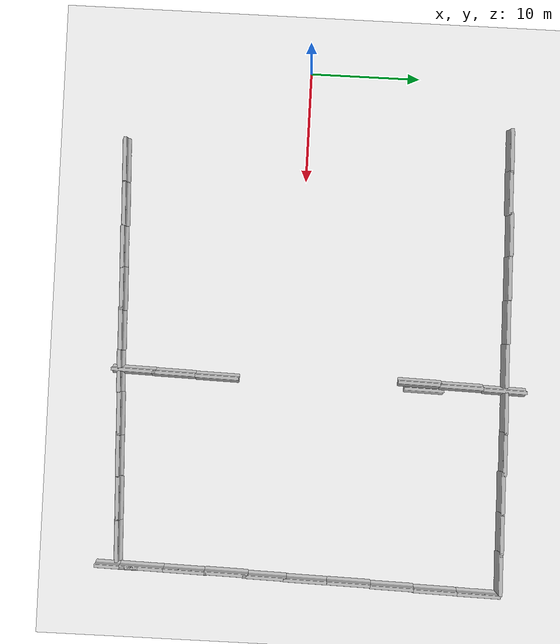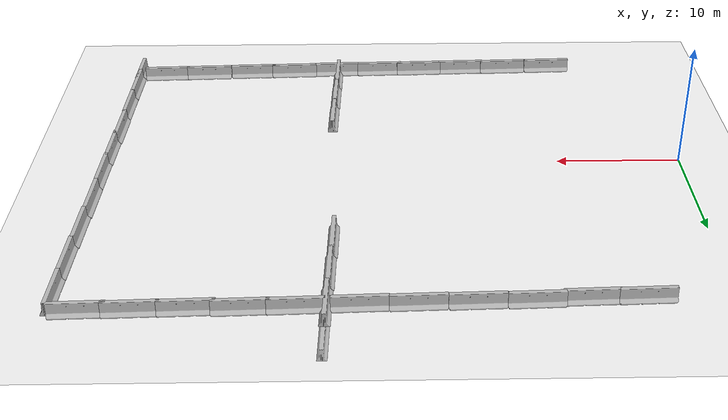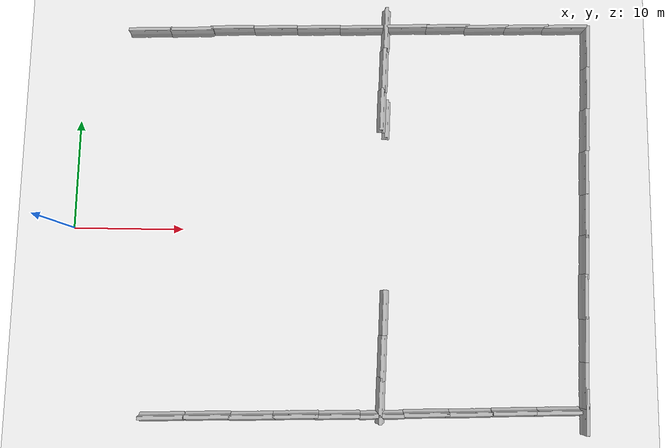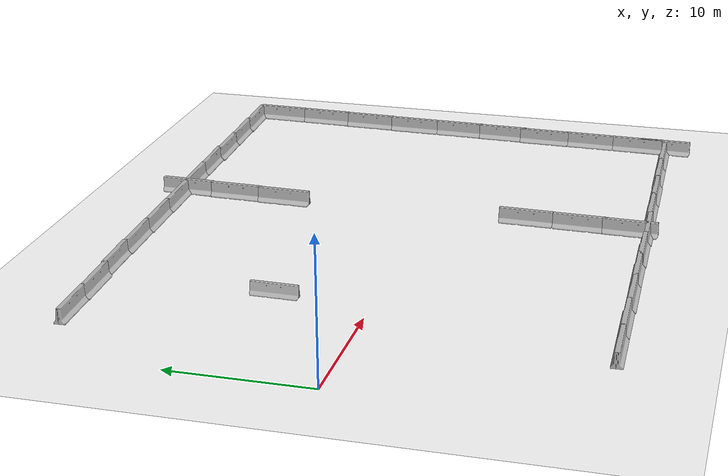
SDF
<sdf version="1.6">
 <world name="default">
  <model name="ground_plane">
   <static>1</static>
   <link name="link">
    <collision name="collision">
     <geometry><plane><normal>0 0 1</normal><size>100 100</size></plane></geometry>
     <surface><friction><ode><mu>100</mu><mu2>50</mu2></ode></friction></surface>
    </collision>
    <visual name="visual">
     <cast_shadows>0</cast_shadows>
     <geometry><plane><normal>0 0 1</normal><size>100 100</size></plane></geometry>
     <material>
      <script><uri>file://media/materials/scripts/gazebo.material</uri><name>Gazebo/Grey</name></script>
     </material>
    </visual>
   </link>
  </model>
  <model name="jersey_barrier_clone_clone_0">
   <static>1</static>
   <link name="link">
    <visual name="visual">
     <geometry>
      <mesh><uri>model://jersey_barrier/meshes/jersey_barrier.dae</uri><scale>1 1 1</scale></mesh>
     </geometry>
    </visual>
    <collision name="upright">
     <pose>0 0 0.5715 0 -0 0</pose>
     <geometry><box><size>4.06542 0.3063 1.143</size></box></geometry>
    </collision>
    <collision name="base">
     <pose>0 0 0.032258 0 -0 0</pose>
     <geometry><box><size>4.06542 0.8107 0.064516</size></box></geometry>
    </collision>
    <collision name="base2">
     <pose>0 0 0.1 0 -0 0</pose>
     <geometry><box><size>4.06542 0.65 0.1</size></box></geometry>
    </collision>
    <collision name="base3">
     <pose>0 0 0.2 0 -0 0</pose>
     <geometry><box><size>4.06542 0.5 0.1</size></box></geometry>
    </collision>
    <collision name="left-angle">
     <pose>0 -0.224 0.2401 0.9 -0 0</pose>
     <geometry><box><size>4.06542 0.5 0.064516</size></box></geometry>
    </collision>
    <collision name="right-angle">
     <pose>0 0.224 0.2401 -0.9 0 0</pose>
     <geometry><box><size>4.06542 0.5 0.064516</size></box></geometry>
    </collision>
   </link>
   <pose>8.87687 -16.7227 0 0 -0 0.033275</pose>
  </model>
  <model name="jersey_barrier_clone_clone_1">
   <static>1</static>
   <link name="link">
    <visual name="visual">
     <geometry>
      <mesh><uri>model://jersey_barrier/meshes/jersey_barrier.dae</uri><scale>1 1 1</scale></mesh>
     </geometry>
    </visual>
    <collision name="upright">
     <pose>0 0 0.5715 0 -0 0</pose>
     <geometry><box><size>4.06542 0.3063 1.143</size></box></geometry>
    </collision>
    <collision name="base">
     <pose>0 0 0.032258 0 -0 0</pose>
     <geometry><box><size>4.06542 0.8107 0.064516</size></box></geometry>
    </collision>
    <collision name="base2">
     <pose>0 0 0.1 0 -0 0</pose>
     <geometry><box><size>4.06542 0.65 0.1</size></box></geometry>
    </collision>
    <collision name="base3">
     <pose>0 0 0.2 0 -0 0</pose>
     <geometry><box><size>4.06542 0.5 0.1</size></box></geometry>
    </collision>
    <collision name="left-angle">
     <pose>0 -0.224 0.2401 0.9 -0 0</pose>
     <geometry><box><size>4.06542 0.5 0.064516</size></box></geometry>
    </collision>
    <collision name="right-angle">
     <pose>0 0.224 0.2401 -0.9 0 0</pose>
     <geometry><box><size>4.06542 0.5 0.064516</size></box></geometry>
    </collision>
   </link>
   <pose>12.9707 -16.5908 0 0 -0 0.033275</pose>
  </model>
  <model name="jersey_barrier_clone_clone_2">
   <static>1</static>
   <link name="link">
    <visual name="visual">
     <geometry>
      <mesh><uri>model://jersey_barrier/meshes/jersey_barrier.dae</uri><scale>1 1 1</scale></mesh>
     </geometry>
    </visual>
    <collision name="upright">
     <pose>0 0 0.5715 0 -0 0</pose>
     <geometry><box><size>4.06542 0.3063 1.143</size></box></geometry>
    </collision>
    <collision name="base">
     <pose>0 0 0.032258 0 -0 0</pose>
     <geometry><box><size>4.06542 0.8107 0.064516</size></box></geometry>
    </collision>
    <collision name="base2">
     <pose>0 0 0.1 0 -0 0</pose>
     <geometry><box><size>4.06542 0.65 0.1</size></box></geometry>
    </collision>
    <collision name="base3">
     <pose>0 0 0.2 0 -0 0</pose>
     <geometry><box><size>4.06542 0.5 0.1</size></box></geometry>
    </collision>
    <collision name="left-angle">
     <pose>0 -0.224 0.2401 0.9 -0 0</pose>
     <geometry><box><size>4.06542 0.5 0.064516</size></box></geometry>
    </collision>
    <collision name="right-angle">
     <pose>0 0.224 0.2401 -0.9 0 0</pose>
     <geometry><box><size>4.06542 0.5 0.064516</size></box></geometry>
    </collision>
   </link>
   <pose>16.8898 -16.5319 0 0 -0 0.033275</pose>
  </model>
  <model name="jersey_barrier_clone_clone_3">
   <static>1</static>
   <link name="link">
    <visual name="visual">
     <geometry>
      <mesh><uri>model://jersey_barrier/meshes/jersey_barrier.dae</uri><scale>1 1 1</scale></mesh>
     </geometry>
    </visual>
    <collision name="upright">
     <pose>0 0 0.5715 0 -0 0</pose>
     <geometry><box><size>4.06542 0.3063 1.143</size></box></geometry>
    </collision>
    <collision name="base">
     <pose>0 0 0.032258 0 -0 0</pose>
     <geometry><box><size>4.06542 0.8107 0.064516</size></box></geometry>
    </collision>
    <collision name="base2">
     <pose>0 0 0.1 0 -0 0</pose>
     <geometry><box><size>4.06542 0.65 0.1</size></box></geometry>
    </collision>
    <collision name="base3">
     <pose>0 0 0.2 0 -0 0</pose>
     <geometry><box><size>4.06542 0.5 0.1</size></box></geometry>
    </collision>
    <collision name="left-angle">
     <pose>0 -0.224 0.2401 0.9 -0 0</pose>
     <geometry><box><size>4.06542 0.5 0.064516</size></box></geometry>
    </collision>
    <collision name="right-angle">
     <pose>0 0.224 0.2401 -0.9 0 0</pose>
     <geometry><box><size>4.06542 0.5 0.064516</size></box></geometry>
    </collision>
   </link>
   <pose>20.7541 -16.3983 0 0 -0 0.033275</pose>
  </model>
  <model name="jersey_barrier_clone_clone_clone">
   <static>1</static>
   <link name="link">
    <visual name="visual">
     <geometry>
      <mesh><uri>model://jersey_barrier/meshes/jersey_barrier.dae</uri><scale>1 1 1</scale></mesh>
     </geometry>
    </visual>
    <collision name="upright">
     <pose>0 0 0.5715 0 -0 0</pose>
     <geometry><box><size>4.06542 0.3063 1.143</size></box></geometry>
    </collision>
    <collision name="base">
     <pose>0 0 0.032258 0 -0 0</pose>
     <geometry><box><size>4.06542 0.8107 0.064516</size></box></geometry>
    </collision>
    <collision name="base2">
     <pose>0 0 0.1 0 -0 0</pose>
     <geometry><box><size>4.06542 0.65 0.1</size></box></geometry>
    </collision>
    <collision name="base3">
     <pose>0 0 0.2 0 -0 0</pose>
     <geometry><box><size>4.06542 0.5 0.1</size></box></geometry>
    </collision>
    <collision name="left-angle">
     <pose>0 -0.224 0.2401 0.9 -0 0</pose>
     <geometry><box><size>4.06542 0.5 0.064516</size></box></geometry>
    </collision>
    <collision name="right-angle">
     <pose>0 0.224 0.2401 -0.9 0 0</pose>
     <geometry><box><size>4.06542 0.5 0.064516</size></box></geometry>
    </collision>
   </link>
   <pose>24.4141 -16.3295 0 0 -0 0.033275</pose>
  </model>
  <model name="jersey_barrier_clone_clone_clone_3_clone">
   <static>1</static>
   <link name="link">
    <visual name="visual">
     <geometry>
      <mesh><uri>model://jersey_barrier/meshes/jersey_barrier.dae</uri><scale>1 1 1</scale></mesh>
     </geometry>
    </visual>
    <collision name="upright">
     <pose>0 0 0.5715 0 -0 0</pose>
     <geometry><box><size>4.06542 0.3063 1.143</size></box></geometry>
    </collision>
    <collision name="base">
     <pose>0 0 0.032258 0 -0 0</pose>
     <geometry><box><size>4.06542 0.8107 0.064516</size></box></geometry>
    </collision>
    <collision name="base2">
     <pose>0 0 0.1 0 -0 0</pose>
     <geometry><box><size>4.06542 0.65 0.1</size></box></geometry>
    </collision>
    <collision name="base3">
     <pose>0 0 0.2 0 -0 0</pose>
     <geometry><box><size>4.06542 0.5 0.1</size></box></geometry>
    </collision>
    <collision name="left-angle">
     <pose>0 -0.224 0.2401 0.9 -0 0</pose>
     <geometry><box><size>4.06542 0.5 0.064516</size></box></geometry>
    </collision>
    <collision name="right-angle">
     <pose>0 0.224 0.2401 -0.9 0 0</pose>
     <geometry><box><size>4.06542 0.5 0.064516</size></box></geometry>
    </collision>
   </link>
   <pose>28.2276 -14.9648 0 0 0 -1.5926</pose>
  </model>
  <model name="jersey_barrier_clone_clone_clone_3_clone_clone">
   <static>1</static>
   <link name="link">
    <visual name="visual">
     <geometry>
      <mesh><uri>model://jersey_barrier/meshes/jersey_barrier.dae</uri><scale>1 1 1</scale></mesh>
     </geometry>
    </visual>
    <collision name="upright">
     <pose>0 0 0.5715 0 -0 0</pose>
     <geometry><box><size>4.06542 0.3063 1.143</size></box></geometry>
    </collision>
    <collision name="base">
     <pose>0 0 0.032258 0 -0 0</pose>
     <geometry><box><size>4.06542 0.8107 0.064516</size></box></geometry>
    </collision>
    <collision name="base2">
     <pose>0 0 0.1 0 -0 0</pose>
     <geometry><box><size>4.06542 0.65 0.1</size></box></geometry>
    </collision>
    <collision name="base3">
     <pose>0 0 0.2 0 -0 0</pose>
     <geometry><box><size>4.06542 0.5 0.1</size></box></geometry>
    </collision>
    <collision name="left-angle">
     <pose>0 -0.224 0.2401 0.9 -0 0</pose>
     <geometry><box><size>4.06542 0.5 0.064516</size></box></geometry>
    </collision>
    <collision name="right-angle">
     <pose>0 0.224 0.2401 -0.9 0 0</pose>
     <geometry><box><size>4.06542 0.5 0.064516</size></box></geometry>
    </collision>
   </link>
   <pose>28.3372 -11.2824 0 0 0 -1.5926</pose>
  </model>
  <model name="jersey_barrier_clone_clone_clone_3_clone_clone_0">
   <static>1</static>
   <link name="link">
    <visual name="visual">
     <geometry>
      <mesh><uri>model://jersey_barrier/meshes/jersey_barrier.dae</uri><scale>1 1 1</scale></mesh>
     </geometry>
    </visual>
    <collision name="upright">
     <pose>0 0 0.5715 0 -0 0</pose>
     <geometry><box><size>4.06542 0.3063 1.143</size></box></geometry>
    </collision>
    <collision name="base">
     <pose>0 0 0.032258 0 -0 0</pose>
     <geometry><box><size>4.06542 0.8107 0.064516</size></box></geometry>
    </collision>
    <collision name="base2">
     <pose>0 0 0.1 0 -0 0</pose>
     <geometry><box><size>4.06542 0.65 0.1</size></box></geometry>
    </collision>
    <collision name="base3">
     <pose>0 0 0.2 0 -0 0</pose>
     <geometry><box><size>4.06542 0.5 0.1</size></box></geometry>
    </collision>
    <collision name="left-angle">
     <pose>0 -0.224 0.2401 0.9 -0 0</pose>
     <geometry><box><size>4.06542 0.5 0.064516</size></box></geometry>
    </collision>
    <collision name="right-angle">
     <pose>0 0.224 0.2401 -0.9 0 0</pose>
     <geometry><box><size>4.06542 0.5 0.064516</size></box></geometry>
    </collision>
   </link>
   <pose>28.4632 -7.24807 0 0 0 -1.5926</pose>
  </model>
  <model name="jersey_barrier_clone_clone_clone_clone">
   <static>1</static>
   <link name="link">
    <visual name="visual">
     <geometry>
      <mesh><uri>model://jersey_barrier/meshes/jersey_barrier.dae</uri><scale>1 1 1</scale></mesh>
     </geometry>
    </visual>
    <collision name="upright">
     <pose>0 0 0.5715 0 -0 0</pose>
     <geometry><box><size>4.06542 0.3063 1.143</size></box></geometry>
    </collision>
    <collision name="base">
     <pose>0 0 0.032258 0 -0 0</pose>
     <geometry><box><size>4.06542 0.8107 0.064516</size></box></geometry>
    </collision>
    <collision name="base2">
     <pose>0 0 0.1 0 -0 0</pose>
     <geometry><box><size>4.06542 0.65 0.1</size></box></geometry>
    </collision>
    <collision name="base3">
     <pose>0 0 0.2 0 -0 0</pose>
     <geometry><box><size>4.06542 0.5 0.1</size></box></geometry>
    </collision>
    <collision name="left-angle">
     <pose>0 -0.224 0.2401 0.9 -0 0</pose>
     <geometry><box><size>4.06542 0.5 0.064516</size></box></geometry>
    </collision>
    <collision name="right-angle">
     <pose>0 0.224 0.2401 -0.9 0 0</pose>
     <geometry><box><size>4.06542 0.5 0.064516</size></box></geometry>
    </collision>
   </link>
   <pose>28.3606 -16.2557 0 0 -0 0.033275</pose>
  </model>
  <model name="jersey_barrier_clone_clone_clone_3_clone_clone_1">
   <static>1</static>
   <link name="link">
    <visual name="visual">
     <geometry>
      <mesh><uri>model://jersey_barrier/meshes/jersey_barrier.dae</uri><scale>1 1 1</scale></mesh>
     </geometry>
    </visual>
    <collision name="upright">
     <pose>0 0 0.5715 0 -0 0</pose>
     <geometry><box><size>4.06542 0.3063 1.143</size></box></geometry>
    </collision>
    <collision name="base">
     <pose>0 0 0.032258 0 -0 0</pose>
     <geometry><box><size>4.06542 0.8107 0.064516</size></box></geometry>
    </collision>
    <collision name="base2">
     <pose>0 0 0.1 0 -0 0</pose>
     <geometry><box><size>4.06542 0.65 0.1</size></box></geometry>
    </collision>
    <collision name="base3">
     <pose>0 0 0.2 0 -0 0</pose>
     <geometry><box><size>4.06542 0.5 0.1</size></box></geometry>
    </collision>
    <collision name="left-angle">
     <pose>0 -0.224 0.2401 0.9 -0 0</pose>
     <geometry><box><size>4.06542 0.5 0.064516</size></box></geometry>
    </collision>
    <collision name="right-angle">
     <pose>0 0.224 0.2401 -0.9 0 0</pose>
     <geometry><box><size>4.06542 0.5 0.064516</size></box></geometry>
    </collision>
   </link>
   <pose>28.2436 15.3088 0 0 0 -1.5926</pose>
  </model>
  <model name="jersey_barrier_clone_clone_clone_3_clone_clone_2">
   <static>1</static>
   <link name="link">
    <visual name="visual">
     <geometry>
      <mesh><uri>model://jersey_barrier/meshes/jersey_barrier.dae</uri><scale>1 1 1</scale></mesh>
     </geometry>
    </visual>
    <collision name="upright">
     <pose>0 0 0.5715 0 -0 0</pose>
     <geometry><box><size>4.06542 0.3063 1.143</size></box></geometry>
    </collision>
    <collision name="base">
     <pose>0 0 0.032258 0 -0 0</pose>
     <geometry><box><size>4.06542 0.8107 0.064516</size></box></geometry>
    </collision>
    <collision name="base2">
     <pose>0 0 0.1 0 -0 0</pose>
     <geometry><box><size>4.06542 0.65 0.1</size></box></geometry>
    </collision>
    <collision name="base3">
     <pose>0 0 0.2 0 -0 0</pose>
     <geometry><box><size>4.06542 0.5 0.1</size></box></geometry>
    </collision>
    <collision name="left-angle">
     <pose>0 -0.224 0.2401 0.9 -0 0</pose>
     <geometry><box><size>4.06542 0.5 0.064516</size></box></geometry>
    </collision>
    <collision name="right-angle">
     <pose>0 0.224 0.2401 -0.9 0 0</pose>
     <geometry><box><size>4.06542 0.5 0.064516</size></box></geometry>
    </collision>
   </link>
   <pose>29.0417 12.8143 -8.43284 0 0 -1.5926</pose>
  </model>
  <model name="jersey_barrier_clone_clone_clone_3_clone_clone_3">
   <static>1</static>
   <link name="link">
    <visual name="visual">
     <geometry>
      <mesh><uri>model://jersey_barrier/meshes/jersey_barrier.dae</uri><scale>1 1 1</scale></mesh>
     </geometry>
    </visual>
    <collision name="upright">
     <pose>0 0 0.5715 0 -0 0</pose>
     <geometry><box><size>4.06542 0.3063 1.143</size></box></geometry>
    </collision>
    <collision name="base">
     <pose>0 0 0.032258 0 -0 0</pose>
     <geometry><box><size>4.06542 0.8107 0.064516</size></box></geometry>
    </collision>
    <collision name="base2">
     <pose>0 0 0.1 0 -0 0</pose>
     <geometry><box><size>4.06542 0.65 0.1</size></box></geometry>
    </collision>
    <collision name="base3">
     <pose>0 0 0.2 0 -0 0</pose>
     <geometry><box><size>4.06542 0.5 0.1</size></box></geometry>
    </collision>
    <collision name="left-angle">
     <pose>0 -0.224 0.2401 0.9 -0 0</pose>
     <geometry><box><size>4.06542 0.5 0.064516</size></box></geometry>
    </collision>
    <collision name="right-angle">
     <pose>0 0.224 0.2401 -0.9 0 0</pose>
     <geometry><box><size>4.06542 0.5 0.064516</size></box></geometry>
    </collision>
   </link>
   <pose>28.0855 11.4464 0 0 0 -1.5926</pose>
  </model>
  <model name="jersey_barrier_clone_clone_clone_3_clone_clone_1_clone">
   <static>1</static>
   <link name="link">
    <visual name="visual">
     <geometry>
      <mesh><uri>model://jersey_barrier/meshes/jersey_barrier.dae</uri><scale>1 1 1</scale></mesh>
     </geometry>
    </visual>
    <collision name="upright">
     <pose>0 0 0.5715 0 -0 0</pose>
     <geometry><box><size>4.06542 0.3063 1.143</size></box></geometry>
    </collision>
    <collision name="base">
     <pose>0 0 0.032258 0 -0 0</pose>
     <geometry><box><size>4.06542 0.8107 0.064516</size></box></geometry>
    </collision>
    <collision name="base2">
     <pose>0 0 0.1 0 -0 0</pose>
     <geometry><box><size>4.06542 0.65 0.1</size></box></geometry>
    </collision>
    <collision name="base3">
     <pose>0 0 0.2 0 -0 0</pose>
     <geometry><box><size>4.06542 0.5 0.1</size></box></geometry>
    </collision>
    <collision name="left-angle">
     <pose>0 -0.224 0.2401 0.9 -0 0</pose>
     <geometry><box><size>4.06542 0.5 0.064516</size></box></geometry>
    </collision>
    <collision name="right-angle">
     <pose>0 0.224 0.2401 -0.9 0 0</pose>
     <geometry><box><size>4.06542 0.5 0.064516</size></box></geometry>
    </collision>
   </link>
   <pose>28.4083 19.2885 0 0 0 -1.5926</pose>
  </model>
  <model name="jersey_barrier_clone_clone_clone_clone_0">
   <static>1</static>
   <link name="link">
    <visual name="visual">
     <geometry>
      <mesh><uri>model://jersey_barrier/meshes/jersey_barrier.dae</uri><scale>1 1 1</scale></mesh>
     </geometry>
    </visual>
    <collision name="upright">
     <pose>0 0 0.5715 0 -0 0</pose>
     <geometry><box><size>4.06542 0.3063 1.143</size></box></geometry>
    </collision>
    <collision name="base">
     <pose>0 0 0.032258 0 -0 0</pose>
     <geometry><box><size>4.06542 0.8107 0.064516</size></box></geometry>
    </collision>
    <collision name="base2">
     <pose>0 0 0.1 0 -0 0</pose>
     <geometry><box><size>4.06542 0.65 0.1</size></box></geometry>
    </collision>
    <collision name="base3">
     <pose>0 0 0.2 0 -0 0</pose>
     <geometry><box><size>4.06542 0.5 0.1</size></box></geometry>
    </collision>
    <collision name="left-angle">
     <pose>0 -0.224 0.2401 0.9 -0 0</pose>
     <geometry><box><size>4.06542 0.5 0.064516</size></box></geometry>
    </collision>
    <collision name="right-angle">
     <pose>0 0.224 0.2401 -0.9 0 0</pose>
     <geometry><box><size>4.06542 0.5 0.064516</size></box></geometry>
    </collision>
   </link>
   <pose>26.0844 19.3245 0 0 -0 0.033275</pose>
  </model>
  <model name="jersey_barrier_clone_clone_clone_clone_0_clone">
   <static>1</static>
   <link name="link">
    <visual name="visual">
     <geometry>
      <mesh><uri>model://jersey_barrier/meshes/jersey_barrier.dae</uri><scale>1 1 1</scale></mesh>
     </geometry>
    </visual>
    <collision name="upright">
     <pose>0 0 0.5715 0 -0 0</pose>
     <geometry><box><size>4.06542 0.3063 1.143</size></box></geometry>
    </collision>
    <collision name="base">
     <pose>0 0 0.032258 0 -0 0</pose>
     <geometry><box><size>4.06542 0.8107 0.064516</size></box></geometry>
    </collision>
    <collision name="base2">
     <pose>0 0 0.1 0 -0 0</pose>
     <geometry><box><size>4.06542 0.65 0.1</size></box></geometry>
    </collision>
    <collision name="base3">
     <pose>0 0 0.2 0 -0 0</pose>
     <geometry><box><size>4.06542 0.5 0.1</size></box></geometry>
    </collision>
    <collision name="left-angle">
     <pose>0 -0.224 0.2401 0.9 -0 0</pose>
     <geometry><box><size>4.06542 0.5 0.064516</size></box></geometry>
    </collision>
    <collision name="right-angle">
     <pose>0 0.224 0.2401 -0.9 0 0</pose>
     <geometry><box><size>4.06542 0.5 0.064516</size></box></geometry>
    </collision>
   </link>
   <pose>22.068 19.2501 0 0 -0 0.033275</pose>
  </model>
  <model name="jersey_barrier_clone_clone_clone_clone_0_clone_0">
   <static>1</static>
   <link name="link">
    <visual name="visual">
     <geometry>
      <mesh><uri>model://jersey_barrier/meshes/jersey_barrier.dae</uri><scale>1 1 1</scale></mesh>
     </geometry>
    </visual>
    <collision name="upright">
     <pose>0 0 0.5715 0 -0 0</pose>
     <geometry><box><size>4.06542 0.3063 1.143</size></box></geometry>
    </collision>
    <collision name="base">
     <pose>0 0 0.032258 0 -0 0</pose>
     <geometry><box><size>4.06542 0.8107 0.064516</size></box></geometry>
    </collision>
    <collision name="base2">
     <pose>0 0 0.1 0 -0 0</pose>
     <geometry><box><size>4.06542 0.65 0.1</size></box></geometry>
    </collision>
    <collision name="base3">
     <pose>0 0 0.2 0 -0 0</pose>
     <geometry><box><size>4.06542 0.5 0.1</size></box></geometry>
    </collision>
    <collision name="left-angle">
     <pose>0 -0.224 0.2401 0.9 -0 0</pose>
     <geometry><box><size>4.06542 0.5 0.064516</size></box></geometry>
    </collision>
    <collision name="right-angle">
     <pose>0 0.224 0.2401 -0.9 0 0</pose>
     <geometry><box><size>4.06542 0.5 0.064516</size></box></geometry>
    </collision>
   </link>
   <pose>18.0097 19.1749 0 0 -0 0.033275</pose>
  </model>
  <model name="jersey_barrier_clone_clone_clone_clone_0_clone_0_clone">
   <static>1</static>
   <link name="link">
    <visual name="visual">
     <geometry>
      <mesh><uri>model://jersey_barrier/meshes/jersey_barrier.dae</uri><scale>1 1 1</scale></mesh>
     </geometry>
    </visual>
    <collision name="upright">
     <pose>0 0 0.5715 0 -0 0</pose>
     <geometry><box><size>4.06542 0.3063 1.143</size></box></geometry>
    </collision>
    <collision name="base">
     <pose>0 0 0.032258 0 -0 0</pose>
     <geometry><box><size>4.06542 0.8107 0.064516</size></box></geometry>
    </collision>
    <collision name="base2">
     <pose>0 0 0.1 0 -0 0</pose>
     <geometry><box><size>4.06542 0.65 0.1</size></box></geometry>
    </collision>
    <collision name="base3">
     <pose>0 0 0.2 0 -0 0</pose>
     <geometry><box><size>4.06542 0.5 0.1</size></box></geometry>
    </collision>
    <collision name="left-angle">
     <pose>0 -0.224 0.2401 0.9 -0 0</pose>
     <geometry><box><size>4.06542 0.5 0.064516</size></box></geometry>
    </collision>
    <collision name="right-angle">
     <pose>0 0.224 0.2401 -0.9 0 0</pose>
     <geometry><box><size>4.06542 0.5 0.064516</size></box></geometry>
    </collision>
   </link>
   <pose>13.949 19.1026 0 0 -0 0.033275</pose>
  </model>
  <model name="jersey_barrier_clone_clone_clone_clone_0_clone_0_clone_clone">
   <static>1</static>
   <link name="link">
    <visual name="visual">
     <geometry>
      <mesh><uri>model://jersey_barrier/meshes/jersey_barrier.dae</uri><scale>1 1 1</scale></mesh>
     </geometry>
    </visual>
    <collision name="upright">
     <pose>0 0 0.5715 0 -0 0</pose>
     <geometry><box><size>4.06542 0.3063 1.143</size></box></geometry>
    </collision>
    <collision name="base">
     <pose>0 0 0.032258 0 -0 0</pose>
     <geometry><box><size>4.06542 0.8107 0.064516</size></box></geometry>
    </collision>
    <collision name="base2">
     <pose>0 0 0.1 0 -0 0</pose>
     <geometry><box><size>4.06542 0.65 0.1</size></box></geometry>
    </collision>
    <collision name="base3">
     <pose>0 0 0.2 0 -0 0</pose>
     <geometry><box><size>4.06542 0.5 0.1</size></box></geometry>
    </collision>
    <collision name="left-angle">
     <pose>0 -0.224 0.2401 0.9 -0 0</pose>
     <geometry><box><size>4.06542 0.5 0.064516</size></box></geometry>
    </collision>
    <collision name="right-angle">
     <pose>0 0.224 0.2401 -0.9 0 0</pose>
     <geometry><box><size>4.06542 0.5 0.064516</size></box></geometry>
    </collision>
   </link>
   <pose>10.1358 18.8674 0 0 -0 0.033275</pose>
  </model>
  <model name="jersey_barrier_clone_clone_clone_clone_0_clone_0_clone_clone_0">
   <static>1</static>
   <link name="link">
    <visual name="visual">
     <geometry>
      <mesh><uri>model://jersey_barrier/meshes/jersey_barrier.dae</uri><scale>1 1 1</scale></mesh>
     </geometry>
    </visual>
    <collision name="upright">
     <pose>0 0 0.5715 0 -0 0</pose>
     <geometry><box><size>4.06542 0.3063 1.143</size></box></geometry>
    </collision>
    <collision name="base">
     <pose>0 0 0.032258 0 -0 0</pose>
     <geometry><box><size>4.06542 0.8107 0.064516</size></box></geometry>
    </collision>
    <collision name="base2">
     <pose>0 0 0.1 0 -0 0</pose>
     <geometry><box><size>4.06542 0.65 0.1</size></box></geometry>
    </collision>
    <collision name="base3">
     <pose>0 0 0.2 0 -0 0</pose>
     <geometry><box><size>4.06542 0.5 0.1</size></box></geometry>
    </collision>
    <collision name="left-angle">
     <pose>0 -0.224 0.2401 0.9 -0 0</pose>
     <geometry><box><size>4.06542 0.5 0.064516</size></box></geometry>
    </collision>
    <collision name="right-angle">
     <pose>0 0.224 0.2401 -0.9 0 0</pose>
     <geometry><box><size>4.06542 0.5 0.064516</size></box></geometry>
    </collision>
   </link>
   <pose>6.27406 18.7774 0 0 -0 0.033275</pose>
  </model>
  <model name="jersey_barrier_clone_clone_clone_clone_clone">
   <static>1</static>
   <link name="link">
    <visual name="visual">
     <geometry>
      <mesh><uri>model://jersey_barrier/meshes/jersey_barrier.dae</uri><scale>1 1 1</scale></mesh>
     </geometry>
    </visual>
    <collision name="upright">
     <pose>0 0 0.5715 0 -0 0</pose>
     <geometry><box><size>4.06542 0.3063 1.143</size></box></geometry>
    </collision>
    <collision name="base">
     <pose>0 0 0.032258 0 -0 0</pose>
     <geometry><box><size>4.06542 0.8107 0.064516</size></box></geometry>
    </collision>
    <collision name="base2">
     <pose>0 0 0.1 0 -0 0</pose>
     <geometry><box><size>4.06542 0.65 0.1</size></box></geometry>
    </collision>
    <collision name="base3">
     <pose>0 0 0.2 0 -0 0</pose>
     <geometry><box><size>4.06542 0.5 0.1</size></box></geometry>
    </collision>
    <collision name="left-angle">
     <pose>0 -0.224 0.2401 0.9 -0 0</pose>
     <geometry><box><size>4.06542 0.5 0.064516</size></box></geometry>
    </collision>
    <collision name="right-angle">
     <pose>0 0.224 0.2401 -0.9 0 0</pose>
     <geometry><box><size>4.06542 0.5 0.064516</size></box></geometry>
    </collision>
   </link>
   <pose>32.2816 -16.0717 0 0 -0 0.033275</pose>
  </model>
  <model name="jersey_barrier_clone_clone_clone_clone_clone_0">
   <static>1</static>
   <link name="link">
    <visual name="visual">
     <geometry>
      <mesh><uri>model://jersey_barrier/meshes/jersey_barrier.dae</uri><scale>1 1 1</scale></mesh>
     </geometry>
    </visual>
    <collision name="upright">
     <pose>0 0 0.5715 0 -0 0</pose>
     <geometry><box><size>4.06542 0.3063 1.143</size></box></geometry>
    </collision>
    <collision name="base">
     <pose>0 0 0.032258 0 -0 0</pose>
     <geometry><box><size>4.06542 0.8107 0.064516</size></box></geometry>
    </collision>
    <collision name="base2">
     <pose>0 0 0.1 0 -0 0</pose>
     <geometry><box><size>4.06542 0.65 0.1</size></box></geometry>
    </collision>
    <collision name="base3">
     <pose>0 0 0.2 0 -0 0</pose>
     <geometry><box><size>4.06542 0.5 0.1</size></box></geometry>
    </collision>
    <collision name="left-angle">
     <pose>0 -0.224 0.2401 0.9 -0 0</pose>
     <geometry><box><size>4.06542 0.5 0.064516</size></box></geometry>
    </collision>
    <collision name="right-angle">
     <pose>0 0.224 0.2401 -0.9 0 0</pose>
     <geometry><box><size>4.06542 0.5 0.064516</size></box></geometry>
    </collision>
   </link>
   <pose>36.0206 -15.9684 0 0 -0 0.033275</pose>
  </model>
  <model name="jersey_barrier_clone_clone_clone_clone_clone_1">
   <static>1</static>
   <link name="link">
    <visual name="visual">
     <geometry>
      <mesh><uri>model://jersey_barrier/meshes/jersey_barrier.dae</uri><scale>1 1 1</scale></mesh>
     </geometry>
    </visual>
    <collision name="upright">
     <pose>0 0 0.5715 0 -0 0</pose>
     <geometry><box><size>4.06542 0.3063 1.143</size></box></geometry>
    </collision>
    <collision name="base">
     <pose>0 0 0.032258 0 -0 0</pose>
     <geometry><box><size>4.06542 0.8107 0.064516</size></box></geometry>
    </collision>
    <collision name="base2">
     <pose>0 0 0.1 0 -0 0</pose>
     <geometry><box><size>4.06542 0.65 0.1</size></box></geometry>
    </collision>
    <collision name="base3">
     <pose>0 0 0.2 0 -0 0</pose>
     <geometry><box><size>4.06542 0.5 0.1</size></box></geometry>
    </collision>
    <collision name="left-angle">
     <pose>0 -0.224 0.2401 0.9 -0 0</pose>
     <geometry><box><size>4.06542 0.5 0.064516</size></box></geometry>
    </collision>
    <collision name="right-angle">
     <pose>0 0.224 0.2401 -0.9 0 0</pose>
     <geometry><box><size>4.06542 0.5 0.064516</size></box></geometry>
    </collision>
   </link>
   <pose>40.1212 -15.7991 0 0 -0 0.033275</pose>
  </model>
  <model name="jersey_barrier_clone_clone_clone_clone_clone_2">
   <static>1</static>
   <link name="link">
    <visual name="visual">
     <geometry>
      <mesh><uri>model://jersey_barrier/meshes/jersey_barrier.dae</uri><scale>1 1 1</scale></mesh>
     </geometry>
    </visual>
    <collision name="upright">
     <pose>0 0 0.5715 0 -0 0</pose>
     <geometry><box><size>4.06542 0.3063 1.143</size></box></geometry>
    </collision>
    <collision name="base">
     <pose>0 0 0.032258 0 -0 0</pose>
     <geometry><box><size>4.06542 0.8107 0.064516</size></box></geometry>
    </collision>
    <collision name="base2">
     <pose>0 0 0.1 0 -0 0</pose>
     <geometry><box><size>4.06542 0.65 0.1</size></box></geometry>
    </collision>
    <collision name="base3">
     <pose>0 0 0.2 0 -0 0</pose>
     <geometry><box><size>4.06542 0.5 0.1</size></box></geometry>
    </collision>
    <collision name="left-angle">
     <pose>0 -0.224 0.2401 0.9 -0 0</pose>
     <geometry><box><size>4.06542 0.5 0.064516</size></box></geometry>
    </collision>
    <collision name="right-angle">
     <pose>0 0.224 0.2401 -0.9 0 0</pose>
     <geometry><box><size>4.06542 0.5 0.064516</size></box></geometry>
    </collision>
   </link>
   <pose>30.4271 19.481 0 0 -0 0.033275</pose>
  </model>
  <model name="jersey_barrier_clone_clone_clone_clone_clone_3">
   <static>1</static>
   <link name="link">
    <visual name="visual">
     <geometry>
      <mesh><uri>model://jersey_barrier/meshes/jersey_barrier.dae</uri><scale>1 1 1</scale></mesh>
     </geometry>
    </visual>
    <collision name="upright">
     <pose>0 0 0.5715 0 -0 0</pose>
     <geometry><box><size>4.06542 0.3063 1.143</size></box></geometry>
    </collision>
    <collision name="base">
     <pose>0 0 0.032258 0 -0 0</pose>
     <geometry><box><size>4.06542 0.8107 0.064516</size></box></geometry>
    </collision>
    <collision name="base2">
     <pose>0 0 0.1 0 -0 0</pose>
     <geometry><box><size>4.06542 0.65 0.1</size></box></geometry>
    </collision>
    <collision name="base3">
     <pose>0 0 0.2 0 -0 0</pose>
     <geometry><box><size>4.06542 0.5 0.1</size></box></geometry>
    </collision>
    <collision name="left-angle">
     <pose>0 -0.224 0.2401 0.9 -0 0</pose>
     <geometry><box><size>4.06542 0.5 0.064516</size></box></geometry>
    </collision>
    <collision name="right-angle">
     <pose>0 0.224 0.2401 -0.9 0 0</pose>
     <geometry><box><size>4.06542 0.5 0.064516</size></box></geometry>
    </collision>
   </link>
   <pose>34.195 19.5712 0 0 -0 0.033275</pose>
  </model>
  <model name="jersey_barrier_clone_clone_clone_clone_clone_4">
   <static>1</static>
   <link name="link">
    <visual name="visual">
     <geometry>
      <mesh><uri>model://jersey_barrier/meshes/jersey_barrier.dae</uri><scale>1 1 1</scale></mesh>
     </geometry>
    </visual>
    <collision name="upright">
     <pose>0 0 0.5715 0 -0 0</pose>
     <geometry><box><size>4.06542 0.3063 1.143</size></box></geometry>
    </collision>
    <collision name="base">
     <pose>0 0 0.032258 0 -0 0</pose>
     <geometry><box><size>4.06542 0.8107 0.064516</size></box></geometry>
    </collision>
    <collision name="base2">
     <pose>0 0 0.1 0 -0 0</pose>
     <geometry><box><size>4.06542 0.65 0.1</size></box></geometry>
    </collision>
    <collision name="base3">
     <pose>0 0 0.2 0 -0 0</pose>
     <geometry><box><size>4.06542 0.5 0.1</size></box></geometry>
    </collision>
    <collision name="left-angle">
     <pose>0 -0.224 0.2401 0.9 -0 0</pose>
     <geometry><box><size>4.06542 0.5 0.064516</size></box></geometry>
    </collision>
    <collision name="right-angle">
     <pose>0 0.224 0.2401 -0.9 0 0</pose>
     <geometry><box><size>4.06542 0.5 0.064516</size></box></geometry>
    </collision>
   </link>
   <pose>37.8447 19.5701 0 0 -0 0.033275</pose>
  </model>
  <model name="jersey_barrier_clone_clone_clone_clone_clone_5">
   <static>1</static>
   <link name="link">
    <visual name="visual">
     <geometry>
      <mesh><uri>model://jersey_barrier/meshes/jersey_barrier.dae</uri><scale>1 1 1</scale></mesh>
     </geometry>
    </visual>
    <collision name="upright">
     <pose>0 0 0.5715 0 -0 0</pose>
     <geometry><box><size>4.06542 0.3063 1.143</size></box></geometry>
    </collision>
    <collision name="base">
     <pose>0 0 0.032258 0 -0 0</pose>
     <geometry><box><size>4.06542 0.8107 0.064516</size></box></geometry>
    </collision>
    <collision name="base2">
     <pose>0 0 0.1 0 -0 0</pose>
     <geometry><box><size>4.06542 0.65 0.1</size></box></geometry>
    </collision>
    <collision name="base3">
     <pose>0 0 0.2 0 -0 0</pose>
     <geometry><box><size>4.06542 0.5 0.1</size></box></geometry>
    </collision>
    <collision name="left-angle">
     <pose>0 -0.224 0.2401 0.9 -0 0</pose>
     <geometry><box><size>4.06542 0.5 0.064516</size></box></geometry>
    </collision>
    <collision name="right-angle">
     <pose>0 0.224 0.2401 -0.9 0 0</pose>
     <geometry><box><size>4.06542 0.5 0.064516</size></box></geometry>
    </collision>
   </link>
   <pose>41.6101 19.6602 0 0 -0 0.033275</pose>
  </model>
  <model name="jersey_barrier_clone_clone_clone_clone_clone_6">
   <static>1</static>
   <link name="link">
    <visual name="visual">
     <geometry>
      <mesh><uri>model://jersey_barrier/meshes/jersey_barrier.dae</uri><scale>1 1 1</scale></mesh>
     </geometry>
    </visual>
    <collision name="upright">
     <pose>0 0 0.5715 0 -0 0</pose>
     <geometry><box><size>4.06542 0.3063 1.143</size></box></geometry>
    </collision>
    <collision name="base">
     <pose>0 0 0.032258 0 -0 0</pose>
     <geometry><box><size>4.06542 0.8107 0.064516</size></box></geometry>
    </collision>
    <collision name="base2">
     <pose>0 0 0.1 0 -0 0</pose>
     <geometry><box><size>4.06542 0.65 0.1</size></box></geometry>
    </collision>
    <collision name="base3">
     <pose>0 0 0.2 0 -0 0</pose>
     <geometry><box><size>4.06542 0.5 0.1</size></box></geometry>
    </collision>
    <collision name="left-angle">
     <pose>0 -0.224 0.2401 0.9 -0 0</pose>
     <geometry><box><size>4.06542 0.5 0.064516</size></box></geometry>
    </collision>
    <collision name="right-angle">
     <pose>0 0.224 0.2401 -0.9 0 0</pose>
     <geometry><box><size>4.06542 0.5 0.064516</size></box></geometry>
    </collision>
   </link>
   <pose>45.2201 19.7211 0 0 -0 0.033275</pose>
  </model>
  <model name="jersey_barrier_clone_clone_clone_3_clone_clone_3_clone">
   <static>1</static>
   <link name="link">
    <visual name="visual">
     <geometry>
      <mesh><uri>model://jersey_barrier/meshes/jersey_barrier.dae</uri><scale>1 1 1</scale></mesh>
     </geometry>
    </visual>
    <collision name="upright">
     <pose>0 0 0.5715 0 -0 0</pose>
     <geometry><box><size>4.06542 0.3063 1.143</size></box></geometry>
    </collision>
    <collision name="base">
     <pose>0 0 0.032258 0 -0 0</pose>
     <geometry><box><size>4.06542 0.8107 0.064516</size></box></geometry>
    </collision>
    <collision name="base2">
     <pose>0 0 0.1 0 -0 0</pose>
     <geometry><box><size>4.06542 0.65 0.1</size></box></geometry>
    </collision>
    <collision name="base3">
     <pose>0 0 0.2 0 -0 0</pose>
     <geometry><box><size>4.06542 0.5 0.1</size></box></geometry>
    </collision>
    <collision name="left-angle">
     <pose>0 -0.224 0.2401 0.9 -0 0</pose>
     <geometry><box><size>4.06542 0.5 0.064516</size></box></geometry>
    </collision>
    <collision name="right-angle">
     <pose>0 0.224 0.2401 -0.9 0 0</pose>
     <geometry><box><size>4.06542 0.5 0.064516</size></box></geometry>
    </collision>
   </link>
   <pose>47.2798 17.8016 0 0 0 -1.5926</pose>
  </model>
  <model name="jersey_barrier_clone_clone_clone_3_clone_clone_3_clone_0">
   <static>1</static>
   <link name="link">
    <visual name="visual">
     <geometry>
      <mesh><uri>model://jersey_barrier/meshes/jersey_barrier.dae</uri><scale>1 1 1</scale></mesh>
     </geometry>
    </visual>
    <collision name="upright">
     <pose>0 0 0.5715 0 -0 0</pose>
     <geometry><box><size>4.06542 0.3063 1.143</size></box></geometry>
    </collision>
    <collision name="base">
     <pose>0 0 0.032258 0 -0 0</pose>
     <geometry><box><size>4.06542 0.8107 0.064516</size></box></geometry>
    </collision>
    <collision name="base2">
     <pose>0 0 0.1 0 -0 0</pose>
     <geometry><box><size>4.06542 0.65 0.1</size></box></geometry>
    </collision>
    <collision name="base3">
     <pose>0 0 0.2 0 -0 0</pose>
     <geometry><box><size>4.06542 0.5 0.1</size></box></geometry>
    </collision>
    <collision name="left-angle">
     <pose>0 -0.224 0.2401 0.9 -0 0</pose>
     <geometry><box><size>4.06542 0.5 0.064516</size></box></geometry>
    </collision>
    <collision name="right-angle">
     <pose>0 0.224 0.2401 -0.9 0 0</pose>
     <geometry><box><size>4.06542 0.5 0.064516</size></box></geometry>
    </collision>
   </link>
   <pose>47.176 13.8067 0 0 0 -1.5926</pose>
  </model>
  <model name="jersey_barrier_clone_clone_clone_3_clone_clone_3_clone_1">
   <static>1</static>
   <link name="link">
    <visual name="visual">
     <geometry>
      <mesh><uri>model://jersey_barrier/meshes/jersey_barrier.dae</uri><scale>1 1 1</scale></mesh>
     </geometry>
    </visual>
    <collision name="upright">
     <pose>0 0 0.5715 0 -0 0</pose>
     <geometry><box><size>4.06542 0.3063 1.143</size></box></geometry>
    </collision>
    <collision name="base">
     <pose>0 0 0.032258 0 -0 0</pose>
     <geometry><box><size>4.06542 0.8107 0.064516</size></box></geometry>
    </collision>
    <collision name="base2">
     <pose>0 0 0.1 0 -0 0</pose>
     <geometry><box><size>4.06542 0.65 0.1</size></box></geometry>
    </collision>
    <collision name="base3">
     <pose>0 0 0.2 0 -0 0</pose>
     <geometry><box><size>4.06542 0.5 0.1</size></box></geometry>
    </collision>
    <collision name="left-angle">
     <pose>0 -0.224 0.2401 0.9 -0 0</pose>
     <geometry><box><size>4.06542 0.5 0.064516</size></box></geometry>
    </collision>
    <collision name="right-angle">
     <pose>0 0.224 0.2401 -0.9 0 0</pose>
     <geometry><box><size>4.06542 0.5 0.064516</size></box></geometry>
    </collision>
   </link>
   <pose>47.0245 9.81936 0 0 0 -1.5926</pose>
  </model>
  <model name="jersey_barrier_clone_clone_clone_3_clone_clone_3_clone_2">
   <static>1</static>
   <link name="link">
    <visual name="visual">
     <geometry>
      <mesh><uri>model://jersey_barrier/meshes/jersey_barrier.dae</uri><scale>1 1 1</scale></mesh>
     </geometry>
    </visual>
    <collision name="upright">
     <pose>0 0 0.5715 0 -0 0</pose>
     <geometry><box><size>4.06542 0.3063 1.143</size></box></geometry>
    </collision>
    <collision name="base">
     <pose>0 0 0.032258 0 -0 0</pose>
     <geometry><box><size>4.06542 0.8107 0.064516</size></box></geometry>
    </collision>
    <collision name="base2">
     <pose>0 0 0.1 0 -0 0</pose>
     <geometry><box><size>4.06542 0.65 0.1</size></box></geometry>
    </collision>
    <collision name="base3">
     <pose>0 0 0.2 0 -0 0</pose>
     <geometry><box><size>4.06542 0.5 0.1</size></box></geometry>
    </collision>
    <collision name="left-angle">
     <pose>0 -0.224 0.2401 0.9 -0 0</pose>
     <geometry><box><size>4.06542 0.5 0.064516</size></box></geometry>
    </collision>
    <collision name="right-angle">
     <pose>0 0.224 0.2401 -0.9 0 0</pose>
     <geometry><box><size>4.06542 0.5 0.064516</size></box></geometry>
    </collision>
   </link>
   <pose>46.8731 5.83194 0 0 0 -1.5926</pose>
  </model>
  <model name="jersey_barrier_clone_clone_clone_3_clone_clone_3_clone_3">
   <static>1</static>
   <link name="link">
    <visual name="visual">
     <geometry>
      <mesh><uri>model://jersey_barrier/meshes/jersey_barrier.dae</uri><scale>1 1 1</scale></mesh>
     </geometry>
    </visual>
    <collision name="upright">
     <pose>0 0 0.5715 0 -0 0</pose>
     <geometry><box><size>4.06542 0.3063 1.143</size></box></geometry>
    </collision>
    <collision name="base">
     <pose>0 0 0.032258 0 -0 0</pose>
     <geometry><box><size>4.06542 0.8107 0.064516</size></box></geometry>
    </collision>
    <collision name="base2">
     <pose>0 0 0.1 0 -0 0</pose>
     <geometry><box><size>4.06542 0.65 0.1</size></box></geometry>
    </collision>
    <collision name="base3">
     <pose>0 0 0.2 0 -0 0</pose>
     <geometry><box><size>4.06542 0.5 0.1</size></box></geometry>
    </collision>
    <collision name="left-angle">
     <pose>0 -0.224 0.2401 0.9 -0 0</pose>
     <geometry><box><size>4.06542 0.5 0.064516</size></box></geometry>
    </collision>
    <collision name="right-angle">
     <pose>0 0.224 0.2401 -0.9 0 0</pose>
     <geometry><box><size>4.06542 0.5 0.064516</size></box></geometry>
    </collision>
   </link>
   <pose>46.795 1.80017 0 0 0 -1.5926</pose>
  </model>
  <model name="jersey_barrier_clone_clone_clone_3_clone_clone_3_clone_4">
   <static>1</static>
   <link name="link">
    <visual name="visual">
     <geometry>
      <mesh><uri>model://jersey_barrier/meshes/jersey_barrier.dae</uri><scale>1 1 1</scale></mesh>
     </geometry>
    </visual>
    <collision name="upright">
     <pose>0 0 0.5715 0 -0 0</pose>
     <geometry><box><size>4.06542 0.3063 1.143</size></box></geometry>
    </collision>
    <collision name="base">
     <pose>0 0 0.032258 0 -0 0</pose>
     <geometry><box><size>4.06542 0.8107 0.064516</size></box></geometry>
    </collision>
    <collision name="base2">
     <pose>0 0 0.1 0 -0 0</pose>
     <geometry><box><size>4.06542 0.65 0.1</size></box></geometry>
    </collision>
    <collision name="base3">
     <pose>0 0 0.2 0 -0 0</pose>
     <geometry><box><size>4.06542 0.5 0.1</size></box></geometry>
    </collision>
    <collision name="left-angle">
     <pose>0 -0.224 0.2401 0.9 -0 0</pose>
     <geometry><box><size>4.06542 0.5 0.064516</size></box></geometry>
    </collision>
    <collision name="right-angle">
     <pose>0 0.224 0.2401 -0.9 0 0</pose>
     <geometry><box><size>4.06542 0.5 0.064516</size></box></geometry>
    </collision>
   </link>
   <pose>46.6747 -1.94636 0 0 0 -1.5926</pose>
  </model>
  <model name="jersey_barrier_clone_clone_clone_3_clone_clone_3_clone_5">
   <static>1</static>
   <link name="link">
    <visual name="visual">
     <geometry>
      <mesh><uri>model://jersey_barrier/meshes/jersey_barrier.dae</uri><scale>1 1 1</scale></mesh>
     </geometry>
    </visual>
    <collision name="upright">
     <pose>0 0 0.5715 0 -0 0</pose>
     <geometry><box><size>4.06542 0.3063 1.143</size></box></geometry>
    </collision>
    <collision name="base">
     <pose>0 0 0.032258 0 -0 0</pose>
     <geometry><box><size>4.06542 0.8107 0.064516</size></box></geometry>
    </collision>
    <collision name="base2">
     <pose>0 0 0.1 0 -0 0</pose>
     <geometry><box><size>4.06542 0.65 0.1</size></box></geometry>
    </collision>
    <collision name="base3">
     <pose>0 0 0.2 0 -0 0</pose>
     <geometry><box><size>4.06542 0.5 0.1</size></box></geometry>
    </collision>
    <collision name="left-angle">
     <pose>0 -0.224 0.2401 0.9 -0 0</pose>
     <geometry><box><size>4.06542 0.5 0.064516</size></box></geometry>
    </collision>
    <collision name="right-angle">
     <pose>0 0.224 0.2401 -0.9 0 0</pose>
     <geometry><box><size>4.06542 0.5 0.064516</size></box></geometry>
    </collision>
   </link>
   <pose>46.5295 -5.48847 0 0 0 -1.5926</pose>
  </model>
  <model name="jersey_barrier_clone_clone_clone_3_clone_clone_3_clone_6">
   <static>1</static>
   <link name="link">
    <visual name="visual">
     <geometry>
      <mesh><uri>model://jersey_barrier/meshes/jersey_barrier.dae</uri><scale>1 1 1</scale></mesh>
     </geometry>
    </visual>
    <collision name="upright">
     <pose>0 0 0.5715 0 -0 0</pose>
     <geometry><box><size>4.06542 0.3063 1.143</size></box></geometry>
    </collision>
    <collision name="base">
     <pose>0 0 0.032258 0 -0 0</pose>
     <geometry><box><size>4.06542 0.8107 0.064516</size></box></geometry>
    </collision>
    <collision name="base2">
     <pose>0 0 0.1 0 -0 0</pose>
     <geometry><box><size>4.06542 0.65 0.1</size></box></geometry>
    </collision>
    <collision name="base3">
     <pose>0 0 0.2 0 -0 0</pose>
     <geometry><box><size>4.06542 0.5 0.1</size></box></geometry>
    </collision>
    <collision name="left-angle">
     <pose>0 -0.224 0.2401 0.9 -0 0</pose>
     <geometry><box><size>4.06542 0.5 0.064516</size></box></geometry>
    </collision>
    <collision name="right-angle">
     <pose>0 0.224 0.2401 -0.9 0 0</pose>
     <geometry><box><size>4.06542 0.5 0.064516</size></box></geometry>
    </collision>
   </link>
   <pose>46.4843 -9.29528 0 0 0 -1.5926</pose>
  </model>
  <model name="jersey_barrier_clone_clone_clone_3_clone_clone_3_clone_7">
   <static>1</static>
   <link name="link">
    <visual name="visual">
     <geometry>
      <mesh><uri>model://jersey_barrier/meshes/jersey_barrier.dae</uri><scale>1 1 1</scale></mesh>
     </geometry>
    </visual>
    <collision name="upright">
     <pose>0 0 0.5715 0 -0 0</pose>
     <geometry><box><size>4.06542 0.3063 1.143</size></box></geometry>
    </collision>
    <collision name="base">
     <pose>0 0 0.032258 0 -0 0</pose>
     <geometry><box><size>4.06542 0.8107 0.064516</size></box></geometry>
    </collision>
    <collision name="base2">
     <pose>0 0 0.1 0 -0 0</pose>
     <geometry><box><size>4.06542 0.65 0.1</size></box></geometry>
    </collision>
    <collision name="base3">
     <pose>0 0 0.2 0 -0 0</pose>
     <geometry><box><size>4.06542 0.5 0.1</size></box></geometry>
    </collision>
    <collision name="left-angle">
     <pose>0 -0.224 0.2401 0.9 -0 0</pose>
     <geometry><box><size>4.06542 0.5 0.064516</size></box></geometry>
    </collision>
    <collision name="right-angle">
     <pose>0 0.224 0.2401 -0.9 0 0</pose>
     <geometry><box><size>4.06542 0.5 0.064516</size></box></geometry>
    </collision>
   </link>
   <pose>46.393 -13.315 0 0 0 -1.5926</pose>
  </model>
  <model name="jersey_barrier_clone_clone_clone_3_clone_clone_3_clone_8">
   <static>1</static>
   <link name="link">
    <visual name="visual">
     <geometry>
      <mesh><uri>model://jersey_barrier/meshes/jersey_barrier.dae</uri><scale>1 1 1</scale></mesh>
     </geometry>
    </visual>
    <collision name="upright">
     <pose>0 0 0.5715 0 -0 0</pose>
     <geometry><box><size>4.06542 0.3063 1.143</size></box></geometry>
    </collision>
    <collision name="base">
     <pose>0 0 0.032258 0 -0 0</pose>
     <geometry><box><size>4.06542 0.8107 0.064516</size></box></geometry>
    </collision>
    <collision name="base2">
     <pose>0 0 0.1 0 -0 0</pose>
     <geometry><box><size>4.06542 0.65 0.1</size></box></geometry>
    </collision>
    <collision name="base3">
     <pose>0 0 0.2 0 -0 0</pose>
     <geometry><box><size>4.06542 0.5 0.1</size></box></geometry>
    </collision>
    <collision name="left-angle">
     <pose>0 -0.224 0.2401 0.9 -0 0</pose>
     <geometry><box><size>4.06542 0.5 0.064516</size></box></geometry>
    </collision>
    <collision name="right-angle">
     <pose>0 0.224 0.2401 -0.9 0 0</pose>
     <geometry><box><size>4.06542 0.5 0.064516</size></box></geometry>
    </collision>
   </link>
   <pose>46.3799 -15.5977 0 0 0 -1.5926</pose>
  </model>
  <model name="jersey_barrier_clone_clone_clone_clone_clone_1_clone">
   <static>1</static>
   <link name="link">
    <visual name="visual">
     <geometry>
      <mesh><uri>model://jersey_barrier/meshes/jersey_barrier.dae</uri><scale>1 1 1</scale></mesh>
     </geometry>
    </visual>
    <collision name="upright">
     <pose>0 0 0.5715 0 -0 0</pose>
     <geometry><box><size>4.06542 0.3063 1.143</size></box></geometry>
    </collision>
    <collision name="base">
     <pose>0 0 0.032258 0 -0 0</pose>
     <geometry><box><size>4.06542 0.8107 0.064516</size></box></geometry>
    </collision>
    <collision name="base2">
     <pose>0 0 0.1 0 -0 0</pose>
     <geometry><box><size>4.06542 0.65 0.1</size></box></geometry>
    </collision>
    <collision name="base3">
     <pose>0 0 0.2 0 -0 0</pose>
     <geometry><box><size>4.06542 0.5 0.1</size></box></geometry>
    </collision>
    <collision name="left-angle">
     <pose>0 -0.224 0.2401 0.9 -0 0</pose>
     <geometry><box><size>4.06542 0.5 0.064516</size></box></geometry>
    </collision>
    <collision name="right-angle">
     <pose>0 0.224 0.2401 -0.9 0 0</pose>
     <geometry><box><size>4.06542 0.5 0.064516</size></box></geometry>
    </collision>
   </link>
   <pose>43.9002 -15.6765 0 0 -0 0.033275</pose>
  </model>
 </world>
</sdf>
